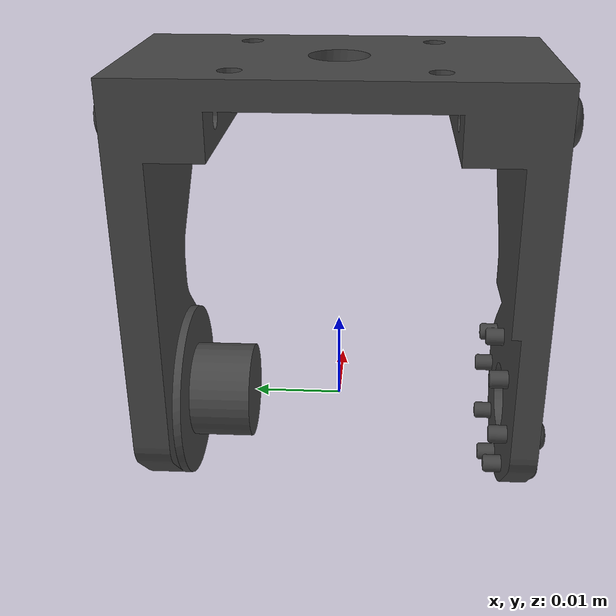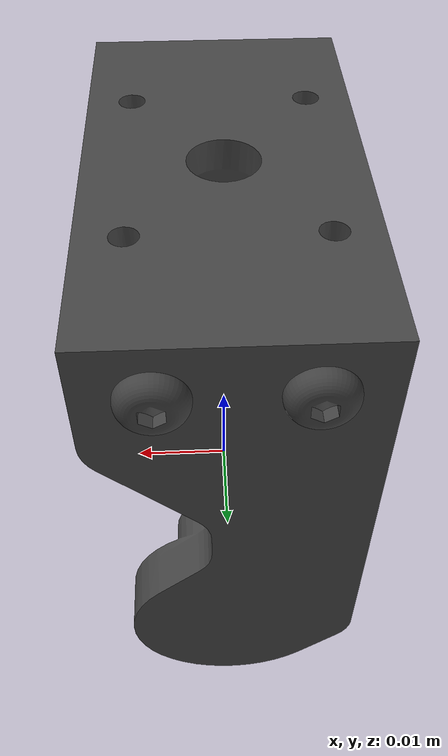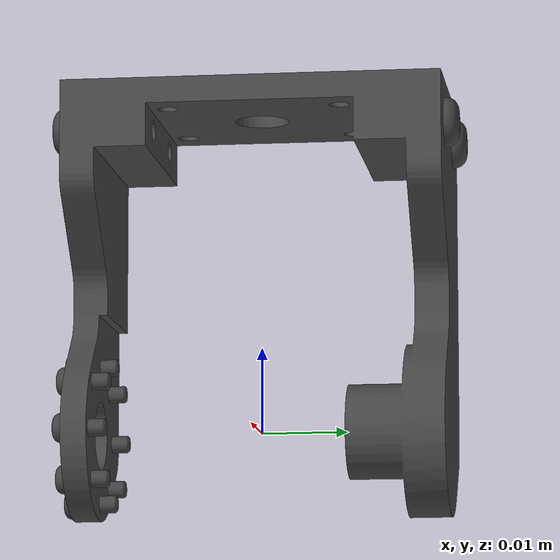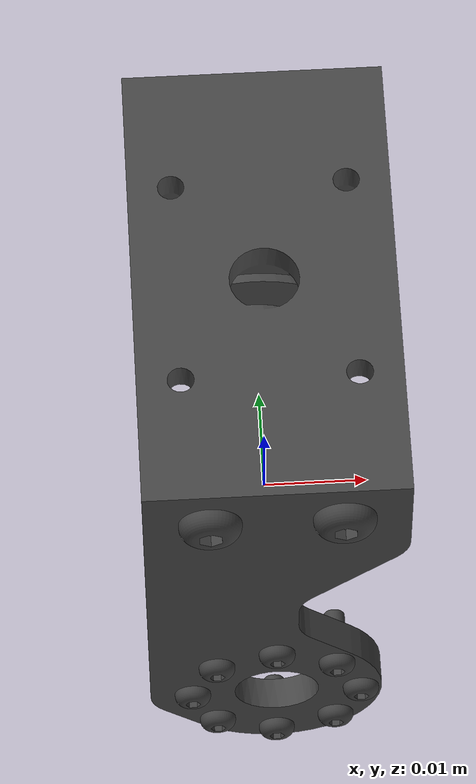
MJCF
<mujoco model="PAN_TILT_3">
  <default>
    <default class="visual">
      <geom group="2" type="mesh" contype="0" conaffinity="0"/>
    </default>
    <default class="collision">
      <geom group="3" type="mesh"/>
    </default>
  </default>
  <asset>
    <material name="69,69,69" specular="1.0" shininess="1.0" rgba="0.270588 0.270588 0.270588 1.000000"/>
    <material name="65,65,65" specular="0.254902" shininess="1.0" rgba="0.254902 0.254902 0.254902 1.000000"/>
    <mesh file="PAN_TILT_3_0.obj"/>
    <mesh file="PAN_TILT_3_1.obj"/>
    <mesh file="PAN_TILT_3_collision_0.obj"/>
    <mesh file="PAN_TILT_3_collision_1.obj"/>
    <mesh file="PAN_TILT_3_collision_2.obj"/>
    <mesh file="PAN_TILT_3_collision_3.obj"/>
    <mesh file="PAN_TILT_3_collision_4.obj"/>
    <mesh file="PAN_TILT_3_collision_5.obj"/>
    <mesh file="PAN_TILT_3_collision_6.obj"/>
    <mesh file="PAN_TILT_3_collision_7.obj"/>
    <mesh file="PAN_TILT_3_collision_8.obj"/>
    <mesh file="PAN_TILT_3_collision_9.obj"/>
    <mesh file="PAN_TILT_3_collision_10.obj"/>
    <mesh file="PAN_TILT_3_collision_11.obj"/>
    <mesh file="PAN_TILT_3_collision_12.obj"/>
    <mesh file="PAN_TILT_3_collision_13.obj"/>
    <mesh file="PAN_TILT_3_collision_14.obj"/>
    <mesh file="PAN_TILT_3_collision_15.obj"/>
    <mesh file="PAN_TILT_3_collision_16.obj"/>
    <mesh file="PAN_TILT_3_collision_17.obj"/>
    <mesh file="PAN_TILT_3_collision_18.obj"/>
    <mesh file="PAN_TILT_3_collision_19.obj"/>
    <mesh file="PAN_TILT_3_collision_20.obj"/>
    <mesh file="PAN_TILT_3_collision_21.obj"/>
    <mesh file="PAN_TILT_3_collision_22.obj"/>
    <mesh file="PAN_TILT_3_collision_23.obj"/>
    <mesh file="PAN_TILT_3_collision_24.obj"/>
    <mesh file="PAN_TILT_3_collision_25.obj"/>
    <mesh file="PAN_TILT_3_collision_26.obj"/>
    <mesh file="PAN_TILT_3_collision_27.obj"/>
    <mesh file="PAN_TILT_3_collision_28.obj"/>
    <mesh file="PAN_TILT_3_collision_29.obj"/>
    <mesh file="PAN_TILT_3_collision_30.obj"/>
    <mesh file="PAN_TILT_3_collision_31.obj"/>
    <mesh file="PAN_TILT_3_collision_32.obj"/>
    <mesh file="PAN_TILT_3_collision_33.obj"/>
    <mesh file="PAN_TILT_3_collision_34.obj"/>
    <mesh file="PAN_TILT_3_collision_35.obj"/>
    <mesh file="PAN_TILT_3_collision_36.obj"/>
    <mesh file="PAN_TILT_3_collision_37.obj"/>
    <mesh file="PAN_TILT_3_collision_38.obj"/>
  </asset>
  <worldbody>
    <body name="PAN_TILT_3">
      <geom mesh="PAN_TILT_3_0" material="65,65,65" class="visual"/>
      <geom mesh="PAN_TILT_3_1" material="69,69,69" class="visual"/>
      <geom mesh="PAN_TILT_3_collision_0" rgba="0.6117619144341275 0.8095720232098751 0.620088940675636 1" class="collision"/>
      <geom mesh="PAN_TILT_3_collision_1" rgba="0.5293374030274017 0.27961864358615995 0.27235376049587356 1" class="collision"/>
      <geom mesh="PAN_TILT_3_collision_2" rgba="0.598311185612127 0.8236825096712879 0.5989355172801011 1" class="collision"/>
      <geom mesh="PAN_TILT_3_collision_3" rgba="0.2942817479926031 0.4792686592284555 0.3941802626179941 1" class="collision"/>
      <geom mesh="PAN_TILT_3_collision_4" rgba="0.5646831004532062 0.5048509210709421 0.7340528044497241 1" class="collision"/>
      <geom mesh="PAN_TILT_3_collision_5" rgba="0.22622331914780502 0.43120980673308595 0.8726855279129904 1" class="collision"/>
      <geom mesh="PAN_TILT_3_collision_6" rgba="0.24351558087957248 0.5125932860508337 0.8916187601611387 1" class="collision"/>
      <geom mesh="PAN_TILT_3_collision_7" rgba="0.1320408002942558 0.5092122370363493 0.4062881475339516 1" class="collision"/>
      <geom mesh="PAN_TILT_3_collision_8" rgba="0.6391829777079172 0.29571404800757406 0.8463490371779714 1" class="collision"/>
      <geom mesh="PAN_TILT_3_collision_9" rgba="0.6380307642781157 0.11718517828096098 0.9762691552243637 1" class="collision"/>
      <geom mesh="PAN_TILT_3_collision_10" rgba="0.4468049174188694 0.18777676659970177 0.4687410438259133 1" class="collision"/>
      <geom mesh="PAN_TILT_3_collision_11" rgba="0.3459901615197497 0.9735272864362622 0.5569616008438601 1" class="collision"/>
      <geom mesh="PAN_TILT_3_collision_12" rgba="0.9167433812591979 0.975714133856096 0.2509434700122355 1" class="collision"/>
      <geom mesh="PAN_TILT_3_collision_13" rgba="0.7277818555284853 0.10641443408726414 0.30132704933560084 1" class="collision"/>
      <geom mesh="PAN_TILT_3_collision_14" rgba="0.06163263093827065 0.6211613439826409 0.5854833776122846 1" class="collision"/>
      <geom mesh="PAN_TILT_3_collision_15" rgba="0.15999170084123515 0.18893398150075003 0.769322340065181 1" class="collision"/>
      <geom mesh="PAN_TILT_3_collision_16" rgba="0.5751642041231692 0.2880177465920878 0.20952879441326866 1" class="collision"/>
      <geom mesh="PAN_TILT_3_collision_17" rgba="0.3711563284059859 0.4696930718133958 0.1645899363317419 1" class="collision"/>
      <geom mesh="PAN_TILT_3_collision_18" rgba="0.3959205660423485 0.9357976513574857 0.10119029183765826 1" class="collision"/>
      <geom mesh="PAN_TILT_3_collision_19" rgba="0.6649773399059952 0.7843309128935597 0.6518998813403615 1" class="collision"/>
      <geom mesh="PAN_TILT_3_collision_20" rgba="0.8782304996696435 0.48742962463669726 0.8148437961914015 1" class="collision"/>
      <geom mesh="PAN_TILT_3_collision_21" rgba="0.21348161536013888 0.3036635502063382 0.014028666830963932 1" class="collision"/>
      <geom mesh="PAN_TILT_3_collision_22" rgba="0.21373928029707057 0.8637388018434857 0.41049822469783825 1" class="collision"/>
      <geom mesh="PAN_TILT_3_collision_23" rgba="0.6928448851873499 0.7538237818484174 0.933075487900089 1" class="collision"/>
      <geom mesh="PAN_TILT_3_collision_24" rgba="0.870698467321658 0.7093649122371074 0.3734745761001761 1" class="collision"/>
      <geom mesh="PAN_TILT_3_collision_25" rgba="0.22209201447594817 0.6976731520938054 0.018425428369549635 1" class="collision"/>
      <geom mesh="PAN_TILT_3_collision_26" rgba="0.12107757659218621 0.10609426345129802 0.10791403308758019 1" class="collision"/>
      <geom mesh="PAN_TILT_3_collision_27" rgba="0.8765680325431892 0.16525092952200127 0.17275792557614522 1" class="collision"/>
      <geom mesh="PAN_TILT_3_collision_28" rgba="0.020267003325696198 0.04087550554196395 0.34879395392534374 1" class="collision"/>
      <geom mesh="PAN_TILT_3_collision_29" rgba="0.2962163888962005 0.3305274496342916 0.4720693739612708 1" class="collision"/>
      <geom mesh="PAN_TILT_3_collision_30" rgba="0.5100639574480216 0.7924744689332862 0.20768717613947218 1" class="collision"/>
      <geom mesh="PAN_TILT_3_collision_31" rgba="0.6929524184428839 0.3303785995487467 0.7498649538095085 1" class="collision"/>
      <geom mesh="PAN_TILT_3_collision_32" rgba="0.11697198842399736 0.09242602702082636 0.867079778176468 1" class="collision"/>
      <geom mesh="PAN_TILT_3_collision_33" rgba="0.8218248938892561 0.9839885040557653 0.11343819833445545 1" class="collision"/>
      <geom mesh="PAN_TILT_3_collision_34" rgba="0.1562791016565097 0.562990287485437 0.7600605376149384 1" class="collision"/>
      <geom mesh="PAN_TILT_3_collision_35" rgba="0.0035572980603647553 0.365196124544366 0.5964734218503939 1" class="collision"/>
      <geom mesh="PAN_TILT_3_collision_36" rgba="0.722617141034946 0.6304898815063866 0.843586789760303 1" class="collision"/>
      <geom mesh="PAN_TILT_3_collision_37" rgba="0.5765553392501361 0.6233830523185654 0.32920486072344435 1" class="collision"/>
      <geom mesh="PAN_TILT_3_collision_38" rgba="0.5430020854318033 0.896730776472949 0.3405158069826295 1" class="collision"/>
    </body>
  </worldbody>
</mujoco>
